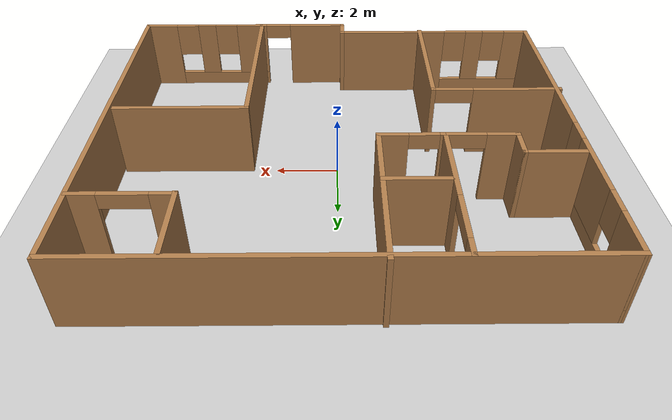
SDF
<sdf version="1.7">
 <world name="default">
  <light name="sun" type="directional">
   <pose>0 0 10 0 -0 0</pose>
   <diffuse>0.8 0.8 0.8 1</diffuse>
   <specular>0.2 0.2 0.2 1</specular>
   <attenuation>
    <range>1000</range>
    <constant>0.9</constant>
    <linear>0.01</linear>
    <quadratic>0.001</quadratic>
   </attenuation>
   <direction>-0.5 0.1 -0.9</direction>
   <spot><inner_angle>0</inner_angle><outer_angle>0</outer_angle><falloff>0</falloff></spot>
  </light>
  <model name="ground_plane">
   <static>1</static>
   <link name="link">
    <collision name="collision">
     <geometry><plane><normal>0 0 1</normal><size>100 100</size></plane></geometry>
     <surface>
      <contact><collide_bitmask>65535</collide_bitmask></contact>
      <friction><ode><mu>100</mu><mu2>50</mu2></ode></friction>
     </surface>
    </collision>
    <visual name="visual">
     <cast_shadows>0</cast_shadows>
     <geometry><plane><normal>0 0 1</normal><size>100 100</size></plane></geometry>
     <material>
      <script><uri>file://media/materials/scripts/gazebo.material</uri><name>Gazebo/Grey</name></script>
     </material>
    </visual>
   </link>
  </model>
  <gravity>0 0 -9.8</gravity>
  <magnetic_field>6e-06 2.3e-05 -4.2e-05</magnetic_field>
  <atmosphere type="adiabatic"/>
  <physics type="ode">
   <max_step_size>0.001</max_step_size>
   <real_time_factor>1</real_time_factor>
   <real_time_update_rate>1000</real_time_update_rate>
  </physics>
  <scene><ambient>0.4 0.4 0.4 1</ambient><background>0.7 0.7 0.7 1</background><shadows>1</shadows></scene>
  <spherical_coordinates>
   <surface_model>EARTH_WGS84</surface_model>
   <latitude_deg>0</latitude_deg>
   <longitude_deg>0</longitude_deg>
   <elevation>0</elevation>
   <heading_deg>0</heading_deg>
  </spherical_coordinates>
  <model name="mapb">
   <pose>-0.037608 0.260345 0 0 -0 0</pose>
   <link name="Door_6">
    <collision name="Door_6_Collision">
     <geometry><box><size>1.38668 0.2 2</size></box></geometry>
     <pose>0 0 1 0 -0 0</pose>
    </collision>
    <visual name="Door_6_Visual">
     <pose>0 0 1 0 -0 0</pose>
     <geometry><box><size>1.38668 0.2 2</size></box></geometry>
     <material>
      <script><uri>file://media/materials/scripts/gazebo.material</uri><name>Gazebo/Grey</name></script>
     </material>
    </visual>
    <pose>3.85504 -0.437893 0 0 -0 0</pose>
   </link>
   <link name="Wall_0">
    <collision name="Wall_0_Collision">
     <geometry><box><size>14.5 0.15 2.5</size></box></geometry>
     <pose>0 0 1.25 0 -0 0</pose>
    </collision>
    <visual name="Wall_0_Visual">
     <pose>0 0 1.25 0 -0 0</pose>
     <geometry><box><size>14.5 0.15 2.5</size></box></geometry>
     <material>
      <script><uri>file://media/materials/scripts/gazebo.material</uri><name>Gazebo/Wood</name></script>
      <ambient>1 1 1 1</ambient>
     </material>
     <meta><layer>0</layer></meta>
    </visual>
    <pose>0.000496 5.88162 0 0 -0 0</pose>
   </link>
   <link name="Wall_1">
    <collision name="Wall_1_Collision">
     <geometry><box><size>12 0.15 2.5</size></box></geometry>
     <pose>0 0 1.25 0 -0 0</pose>
    </collision>
    <visual name="Wall_1_Visual">
     <pose>0 0 1.25 0 -0 0</pose>
     <geometry><box><size>12 0.15 2.5</size></box></geometry>
     <material>
      <script><uri>file://media/materials/scripts/gazebo.material</uri><name>Gazebo/Wood</name></script>
      <ambient>1 1 1 1</ambient>
     </material>
     <meta><layer>0</layer></meta>
    </visual>
    <pose>7.1755 -0.043385 0 0 -0 -1.5708</pose>
   </link>
   <link name="Wall_10">
    <collision name="Wall_10_Collision">
     <geometry><box><size>5.75 0.15 2.5</size></box></geometry>
     <pose>0 0 1.25 0 -0 0</pose>
    </collision>
    <visual name="Wall_10_Visual">
     <pose>0 0 1.25 0 -0 0</pose>
     <geometry><box><size>5.75 0.15 2.5</size></box></geometry>
     <material>
      <script><uri>file://media/materials/scripts/gazebo.material</uri><name>Gazebo/Wood</name></script>
      <ambient>1 1 1 1</ambient>
     </material>
     <meta><layer>0</layer></meta>
    </visual>
    <pose>2.86479 -3.14485 0 0 -0 -1.5708</pose>
   </link>
   <link name="Wall_12">
    <collision name="Wall_12_Collision">
     <geometry><box><size>4.25 0.15 2.5</size></box></geometry>
     <pose>0 0 1.25 0 -0 0</pose>
    </collision>
    <visual name="Wall_12_Visual">
     <pose>0 0 1.25 0 -0 0</pose>
     <geometry><box><size>4.25 0.15 2.5</size></box></geometry>
     <material>
      <script><uri>file://media/materials/scripts/gazebo.material</uri><name>Gazebo/Wood</name></script>
      <ambient>1 1 1 1</ambient>
     </material>
     <meta><layer>0</layer></meta>
    </visual>
    <pose>4.91479 -0.344847 0 0 -0 0</pose>
   </link>
   <link name="Wall_14">
    <collision name="Wall_14_Collision">
     <geometry><box><size>2 0.15 2.5</size></box></geometry>
     <pose>0 0 1.25 0 -0 0</pose>
    </collision>
    <visual name="Wall_14_Visual">
     <pose>0 0 1.25 0 -0 0</pose>
     <geometry><box><size>2 0.15 2.5</size></box></geometry>
     <material>
      <script><uri>file://media/materials/scripts/gazebo.material</uri><name>Gazebo/Wood</name></script>
      <ambient>1 1 1 1</ambient>
     </material>
     <meta><layer>0</layer></meta>
    </visual>
    <pose>-6.18101 1.96839 0 0 -0 0</pose>
   </link>
   <link name="Wall_15">
    <collision name="Wall_15_Collision">
     <geometry><box><size>1 0.15 2.5</size></box></geometry>
     <pose>0 0 1.25 0 -0 0</pose>
    </collision>
    <visual name="Wall_15_Visual">
     <pose>0 0 1.25 0 -0 0</pose>
     <geometry><box><size>1 0.15 2.5</size></box></geometry>
     <material>
      <script><uri>file://media/materials/scripts/gazebo.material</uri><name>Gazebo/Wood</name></script>
      <ambient>1 1 1 1</ambient>
     </material>
     <meta><layer>0</layer></meta>
    </visual>
    <pose>-5.25601 1.54339 0 0 -0 -1.5708</pose>
   </link>
   <link name="Wall_16">
    <pose>-3.20601 1.11839 0 0 -0 0</pose>
    <visual name="Wall_16_Visual_0">
     <pose>-1.6276 0 1.25 0 -0 0</pose>
     <geometry><box><size>0.99479 0.15 2.5</size></box></geometry>
     <material>
      <script><uri>file://media/materials/scripts/gazebo.material</uri><name>Gazebo/Wood</name></script>
      <ambient>1 1 1 1</ambient>
     </material>
     <meta><layer>0</layer></meta>
    </visual>
    <collision name="Wall_16_Collision_0">
     <geometry><box><size>0.99479 0.15 2.5</size></box></geometry>
     <pose>-1.6276 0 1.25 0 -0 0</pose>
    </collision>
    <visual name="Wall_16_Visual_1">
     <pose>0.158097 0 1.25 0 -0 0</pose>
     <geometry><box><size>0.168265 0.15 2.5</size></box></geometry>
     <material>
      <script><uri>file://media/materials/scripts/gazebo.material</uri><name>Gazebo/Wood</name></script>
      <ambient>1 1 1 1</ambient>
     </material>
     <meta><layer>0</layer></meta>
    </visual>
    <collision name="Wall_16_Collision_1">
     <geometry><box><size>0.168265 0.15 2.5</size></box></geometry>
     <pose>0.158097 0 1.25 0 -0 0</pose>
    </collision>
    <visual name="Wall_16_Visual_2">
     <pose>1.64236 0 1.25 0 -0 0</pose>
     <geometry><box><size>0.965276 0.15 2.5</size></box></geometry>
     <material>
      <script><uri>file://media/materials/scripts/gazebo.material</uri><name>Gazebo/Wood</name></script>
      <ambient>1 1 1 1</ambient>
     </material>
     <meta><layer>0</layer></meta>
    </visual>
    <collision name="Wall_16_Collision_2">
     <geometry><box><size>0.965276 0.15 2.5</size></box></geometry>
     <pose>1.64236 0 1.25 0 -0 0</pose>
    </collision>
    <visual name="Wall_16_Visual_3">
     <pose>-0.528123 0 2.25 0 -0 0</pose>
     <geometry><box><size>1.20417 0.15 0.5</size></box></geometry>
     <material>
      <script><uri>file://media/materials/scripts/gazebo.material</uri><name>Gazebo/Wood</name></script>
      <ambient>1 1 1 1</ambient>
     </material>
     <meta><layer>0</layer></meta>
    </visual>
    <collision name="Wall_16_Collision_3">
     <geometry><box><size>1.20417 0.15 0.5</size></box></geometry>
     <pose>-0.528123 0 2.25 0 -0 0</pose>
    </collision>
    <visual name="Wall_16_Visual_4">
     <pose>0.700977 0 2.25 0 -0 0</pose>
     <geometry><box><size>0.917495 0.15 0.5</size></box></geometry>
     <material>
      <script><uri>file://media/materials/scripts/gazebo.material</uri><name>Gazebo/Wood</name></script>
      <ambient>1 1 1 1</ambient>
     </material>
     <meta><layer>0</layer></meta>
    </visual>
    <collision name="Wall_16_Collision_4">
     <geometry><box><size>0.917495 0.15 0.5</size></box></geometry>
     <pose>0.700977 0 2.25 0 -0 0</pose>
    </collision>
   </link>
   <link name="Wall_17">
    <collision name="Wall_17_Collision">
     <geometry><box><size>5 0.15 2.5</size></box></geometry>
     <pose>0 0 1.25 0 -0 0</pose>
    </collision>
    <visual name="Wall_17_Visual">
     <pose>0 0 1.25 0 -0 0</pose>
     <geometry><box><size>5 0.15 2.5</size></box></geometry>
     <material>
      <script><uri>file://media/materials/scripts/gazebo.material</uri><name>Gazebo/Wood</name></script>
      <ambient>1 1 1 1</ambient>
     </material>
     <meta><layer>0</layer></meta>
    </visual>
    <pose>-1.15601 3.54339 0 0 -0 1.5708</pose>
   </link>
   <link name="Wall_19">
    <pose>-3.12352 3.57042 0 0 -0 -1.5708</pose>
    <visual name="Wall_19_Visual_0">
     <pose>-2.07655 0 1.25 0 -0 0</pose>
     <geometry><box><size>0.596894 0.15 2.5</size></box></geometry>
     <material>
      <script><uri>file://media/materials/scripts/gazebo.material</uri><name>Gazebo/Wood</name></script>
      <ambient>1 1 1 1</ambient>
     </material>
     <meta><layer>0</layer></meta>
    </visual>
    <collision name="Wall_19_Collision_0">
     <geometry><box><size>0.596894 0.15 2.5</size></box></geometry>
     <pose>-2.07655 0 1.25 0 -0 0</pose>
    </collision>
    <visual name="Wall_19_Visual_1">
     <pose>1.06783 0 1.25 0 -0 0</pose>
     <geometry><box><size>2.61434 0.15 2.5</size></box></geometry>
     <material>
      <script><uri>file://media/materials/scripts/gazebo.material</uri><name>Gazebo/Wood</name></script>
      <ambient>1 1 1 1</ambient>
     </material>
     <meta><layer>0</layer></meta>
    </visual>
    <collision name="Wall_19_Collision_1">
     <geometry><box><size>2.61434 0.15 2.5</size></box></geometry>
     <pose>1.06783 0 1.25 0 -0 0</pose>
    </collision>
    <visual name="Wall_19_Visual_2">
     <pose>-1.00872 0 2.25 0 -0 0</pose>
     <geometry><box><size>1.53877 0.15 0.5</size></box></geometry>
     <material>
      <script><uri>file://media/materials/scripts/gazebo.material</uri><name>Gazebo/Wood</name></script>
      <ambient>1 1 1 1</ambient>
     </material>
     <meta><layer>0</layer></meta>
    </visual>
    <collision name="Wall_19_Collision_2">
     <geometry><box><size>1.53877 0.15 0.5</size></box></geometry>
     <pose>-1.00872 0 2.25 0 -0 0</pose>
    </collision>
   </link>
   <link name="Wall_2">
    <pose>3.5005 -5.96838 0 0 -0 3.14159</pose>
    <visual name="Wall_2_Visual_0">
     <pose>-3.16479 0 1.25 0 -0 0</pose>
     <geometry><box><size>1.17041 0.15 2.5</size></box></geometry>
     <material>
      <script><uri>file://media/materials/scripts/gazebo.material</uri><name>Gazebo/Wood</name></script>
      <ambient>1 1 1 1</ambient>
     </material>
     <meta><layer>0</layer></meta>
    </visual>
    <collision name="Wall_2_Collision_0">
     <geometry><box><size>1.17041 0.15 2.5</size></box></geometry>
     <pose>-3.16479 0 1.25 0 -0 0</pose>
    </collision>
    <visual name="Wall_2_Visual_1">
     <pose>2.72879 0 1.25 0 -0 0</pose>
     <geometry><box><size>2.04241 0.15 2.5</size></box></geometry>
     <material>
      <script><uri>file://media/materials/scripts/gazebo.material</uri><name>Gazebo/Wood</name></script>
      <ambient>1 1 1 1</ambient>
     </material>
     <meta><layer>0</layer></meta>
    </visual>
    <collision name="Wall_2_Collision_1">
     <geometry><box><size>2.04241 0.15 2.5</size></box></geometry>
     <pose>2.72879 0 1.25 0 -0 0</pose>
    </collision>
    <visual name="Wall_2_Visual_2">
     <pose>-0.886001 0 0.25 0 -0 0</pose>
     <geometry><box><size>3.38718 0.15 0.5</size></box></geometry>
     <material>
      <script><uri>file://media/materials/scripts/gazebo.material</uri><name>Gazebo/Wood</name></script>
      <ambient>1 1 1 1</ambient>
     </material>
     <meta><layer>0</layer></meta>
    </visual>
    <collision name="Wall_2_Collision_2">
     <geometry><box><size>3.38718 0.15 0.5</size></box></geometry>
     <pose>-0.886001 0 0.25 0 -0 0</pose>
    </collision>
    <visual name="Wall_2_Visual_3">
     <pose>-1.44957 0 1.5 0 -0 0</pose>
     <geometry><box><size>0.66004 0.15 2</size></box></geometry>
     <material>
      <script><uri>file://media/materials/scripts/gazebo.material</uri><name>Gazebo/Wood</name></script>
      <ambient>1 1 1 1</ambient>
     </material>
     <meta><layer>0</layer></meta>
    </visual>
    <collision name="Wall_2_Collision_3">
     <geometry><box><size>0.66004 0.15 2</size></box></geometry>
     <pose>-1.44957 0 1.5 0 -0 0</pose>
    </collision>
    <visual name="Wall_2_Visual_4">
     <pose>0.244019 0 1.5 0 -0 0</pose>
     <geometry><box><size>1.12714 0.15 2</size></box></geometry>
     <material>
      <script><uri>file://media/materials/scripts/gazebo.material</uri><name>Gazebo/Wood</name></script>
      <ambient>1 1 1 1</ambient>
     </material>
     <meta><layer>0</layer></meta>
    </visual>
    <collision name="Wall_2_Collision_4">
     <geometry><box><size>1.12714 0.15 2</size></box></geometry>
     <pose>0.244019 0 1.5 0 -0 0</pose>
    </collision>
    <visual name="Wall_2_Visual_5">
     <pose>-2.17959 0 1.9 0 -0 0</pose>
     <geometry><box><size>0.8 0.15 1.2</size></box></geometry>
     <material>
      <script><uri>file://media/materials/scripts/gazebo.material</uri><name>Gazebo/Wood</name></script>
      <ambient>1 1 1 1</ambient>
     </material>
     <meta><layer>0</layer></meta>
    </visual>
    <collision name="Wall_2_Collision_5">
     <geometry><box><size>0.8 0.15 1.2</size></box></geometry>
     <pose>-2.17959 0 1.9 0 -0 0</pose>
    </collision>
    <visual name="Wall_2_Visual_6">
     <pose>-0.719549 0 1.9 0 -0 0</pose>
     <geometry><box><size>0.8 0.15 1.2</size></box></geometry>
     <material>
      <script><uri>file://media/materials/scripts/gazebo.material</uri><name>Gazebo/Wood</name></script>
      <ambient>1 1 1 1</ambient>
     </material>
     <meta><layer>0</layer></meta>
    </visual>
    <collision name="Wall_2_Collision_6">
     <geometry><box><size>0.8 0.15 1.2</size></box></geometry>
     <pose>-0.719549 0 1.9 0 -0 0</pose>
    </collision>
    <visual name="Wall_2_Visual_7">
     <pose>1.25759 0 2.25 0 -0 0</pose>
     <geometry><box><size>0.9 0.15 0.5</size></box></geometry>
     <material>
      <script><uri>file://media/materials/scripts/gazebo.material</uri><name>Gazebo/Wood</name></script>
      <ambient>1 1 1 1</ambient>
     </material>
     <meta><layer>0</layer></meta>
    </visual>
    <collision name="Wall_2_Collision_7">
     <geometry><box><size>0.9 0.15 0.5</size></box></geometry>
     <pose>1.25759 0 2.25 0 -0 0</pose>
    </collision>
   </link>
   <link name="Wall_24">
    <pose>5.71513 3.66847 0 0 -0 3.14159</pose>
    <visual name="Wall_24_Visual_0">
     <pose>-1.07155 0 1.25 0 -0 0</pose>
     <geometry><box><size>0.856909 0.15 2.5</size></box></geometry>
     <material>
      <script><uri>file://media/materials/scripts/gazebo.material</uri><name>Gazebo/Wood</name></script>
      <ambient>1 1 1 1</ambient>
     </material>
     <meta><layer>0</layer></meta>
    </visual>
    <collision name="Wall_24_Collision_0">
     <geometry><box><size>0.856909 0.15 2.5</size></box></geometry>
     <pose>-1.07155 0 1.25 0 -0 0</pose>
    </collision>
    <visual name="Wall_24_Visual_1">
     <pose>1.12179 0 1.25 0 -0 0</pose>
     <geometry><box><size>0.756411 0.15 2.5</size></box></geometry>
     <material>
      <script><uri>file://media/materials/scripts/gazebo.material</uri><name>Gazebo/Wood</name></script>
      <ambient>1 1 1 1</ambient>
     </material>
     <meta><layer>0</layer></meta>
    </visual>
    <collision name="Wall_24_Collision_1">
     <geometry><box><size>0.756411 0.15 2.5</size></box></geometry>
     <pose>1.12179 0 1.25 0 -0 0</pose>
    </collision>
    <visual name="Wall_24_Visual_2">
     <pose>0.050249 0 2.25 0 -0 0</pose>
     <geometry><box><size>1.38668 0.15 0.5</size></box></geometry>
     <material>
      <script><uri>file://media/materials/scripts/gazebo.material</uri><name>Gazebo/Wood</name></script>
      <ambient>1 1 1 1</ambient>
     </material>
     <meta><layer>0</layer></meta>
    </visual>
    <collision name="Wall_24_Collision_2">
     <geometry><box><size>1.38668 0.15 0.5</size></box></geometry>
     <pose>0.050249 0 2.25 0 -0 0</pose>
    </collision>
   </link>
   <link name="Wall_25">
    <collision name="Wall_25_Collision">
     <geometry><box><size>2.25 0.15 2.5</size></box></geometry>
     <pose>0 0 1.25 0 -0 0</pose>
    </collision>
    <visual name="Wall_25_Visual">
     <pose>0 0 1.25 0 -0 0</pose>
     <geometry><box><size>2.25 0.15 2.5</size></box></geometry>
     <material>
      <script><uri>file://media/materials/scripts/gazebo.material</uri><name>Gazebo/Wood</name></script>
      <ambient>1 1 1 1</ambient>
     </material>
     <meta><layer>0</layer></meta>
    </visual>
    <pose>4.29013 4.71847 0 0 -0 1.5708</pose>
   </link>
   <link name="Wall_27">
    <pose>-5.1245 -1.34485 0 0 -0 3.14159</pose>
    <visual name="Wall_27_Visual_0">
     <pose>-2.11957 0 1.25 0 -0 0</pose>
     <geometry><box><size>0.01087 0.15 2.5</size></box></geometry>
     <material>
      <script><uri>file://media/materials/scripts/gazebo.material</uri><name>Gazebo/Wood</name></script>
      <ambient>1 1 1 1</ambient>
     </material>
     <meta><layer>0</layer></meta>
    </visual>
    <collision name="Wall_27_Collision_0">
     <geometry><box><size>0.01087 0.15 2.5</size></box></geometry>
     <pose>-2.11957 0 1.25 0 -0 0</pose>
    </collision>
    <visual name="Wall_27_Visual_1">
     <pose>0.683566 0 1.25 0 -0 0</pose>
     <geometry><box><size>2.88287 0.15 2.5</size></box></geometry>
     <material>
      <script><uri>file://media/materials/scripts/gazebo.material</uri><name>Gazebo/Wood</name></script>
      <ambient>1 1 1 1</ambient>
     </material>
     <meta><layer>0</layer></meta>
    </visual>
    <collision name="Wall_27_Collision_1">
     <geometry><box><size>2.88287 0.15 2.5</size></box></geometry>
     <pose>0.683566 0 1.25 0 -0 0</pose>
    </collision>
    <visual name="Wall_27_Visual_2">
     <pose>-1.436 0 2.25 0 -0 0</pose>
     <geometry><box><size>1.35626 0.15 0.5</size></box></geometry>
     <material>
      <script><uri>file://media/materials/scripts/gazebo.material</uri><name>Gazebo/Wood</name></script>
      <ambient>1 1 1 1</ambient>
     </material>
     <meta><layer>0</layer></meta>
    </visual>
    <collision name="Wall_27_Collision_2">
     <geometry><box><size>1.35626 0.15 0.5</size></box></geometry>
     <pose>-1.436 0 2.25 0 -0 0</pose>
    </collision>
   </link>
   <link name="Wall_29">
    <collision name="Wall_29_Collision">
     <geometry><box><size>2 0.15 2.5</size></box></geometry>
     <pose>0 0 1.25 0 -0 0</pose>
    </collision>
    <visual name="Wall_29_Visual">
     <pose>0 0 1.25 0 -0 0</pose>
     <geometry><box><size>2 0.15 2.5</size></box></geometry>
     <material>
      <script><uri>file://media/materials/scripts/gazebo.material</uri><name>Gazebo/Wood</name></script>
      <ambient>1 1 1 1</ambient>
     </material>
     <meta><layer>0</layer></meta>
    </visual>
    <pose>-2.08766 3.12095 0 0 -0 0</pose>
   </link>
   <link name="Wall_3">
    <collision name="Wall_3_Collision">
     <geometry><box><size>0.75 0.15 2.5</size></box></geometry>
     <pose>0 0 1.25 0 -0 0</pose>
    </collision>
    <visual name="Wall_3_Visual">
     <pose>0 0 1.25 0 -0 0</pose>
     <geometry><box><size>0.75 0.15 2.5</size></box></geometry>
     <material>
      <script><uri>file://media/materials/scripts/gazebo.material</uri><name>Gazebo/Wood</name></script>
      <ambient>1 1 1 1</ambient>
     </material>
     <meta><layer>0</layer></meta>
    </visual>
    <pose>-0.174504 -5.66838 0 0 -0 1.5708</pose>
   </link>
   <link name="Wall_4">
    <pose>-3.5995 -5.36838 0 0 -0 3.14159</pose>
    <visual name="Wall_4_Visual_0">
     <pose>-1.5557 0 1.25 0 -0 0</pose>
     <geometry><box><size>3.8886 0.15 2.5</size></box></geometry>
     <material>
      <script><uri>file://media/materials/scripts/gazebo.material</uri><name>Gazebo/Wood</name></script>
      <ambient>1 1 1 1</ambient>
     </material>
     <meta><layer>0</layer></meta>
    </visual>
    <collision name="Wall_4_Collision_0">
     <geometry><box><size>3.8886 0.15 2.5</size></box></geometry>
     <pose>-1.5557 0 1.25 0 -0 0</pose>
    </collision>
    <visual name="Wall_4_Visual_1">
     <pose>1.9443 0 0.25 0 -0 0</pose>
     <geometry><box><size>3.1114 0.15 0.5</size></box></geometry>
     <material>
      <script><uri>file://media/materials/scripts/gazebo.material</uri><name>Gazebo/Wood</name></script>
      <ambient>1 1 1 1</ambient>
     </material>
     <meta><layer>0</layer></meta>
    </visual>
    <collision name="Wall_4_Collision_1">
     <geometry><box><size>3.1114 0.15 0.5</size></box></geometry>
     <pose>1.9443 0 0.25 0 -0 0</pose>
    </collision>
    <visual name="Wall_4_Visual_2">
     <pose>1.50341 0 1.5 0 -0 0</pose>
     <geometry><box><size>0.629623 0.15 2</size></box></geometry>
     <material>
      <script><uri>file://media/materials/scripts/gazebo.material</uri><name>Gazebo/Wood</name></script>
      <ambient>1 1 1 1</ambient>
     </material>
     <meta><layer>0</layer></meta>
    </visual>
    <collision name="Wall_4_Collision_2">
     <geometry><box><size>0.629623 0.15 2</size></box></geometry>
     <pose>1.50341 0 1.5 0 -0 0</pose>
    </collision>
    <visual name="Wall_4_Visual_3">
     <pose>3.05911 0 1.5 0 -0 0</pose>
     <geometry><box><size>0.881774 0.15 2</size></box></geometry>
     <material>
      <script><uri>file://media/materials/scripts/gazebo.material</uri><name>Gazebo/Wood</name></script>
      <ambient>1 1 1 1</ambient>
     </material>
     <meta><layer>0</layer></meta>
    </visual>
    <collision name="Wall_4_Collision_3">
     <geometry><box><size>0.881774 0.15 2</size></box></geometry>
     <pose>3.05911 0 1.5 0 -0 0</pose>
    </collision>
    <visual name="Wall_4_Visual_4">
     <pose>0.788603 0 1.9 0 -0 0</pose>
     <geometry><box><size>0.8 0.15 1.2</size></box></geometry>
     <material>
      <script><uri>file://media/materials/scripts/gazebo.material</uri><name>Gazebo/Wood</name></script>
      <ambient>1 1 1 1</ambient>
     </material>
     <meta><layer>0</layer></meta>
    </visual>
    <collision name="Wall_4_Collision_4">
     <geometry><box><size>0.8 0.15 1.2</size></box></geometry>
     <pose>0.788603 0 1.9 0 -0 0</pose>
    </collision>
    <visual name="Wall_4_Visual_5">
     <pose>2.21823 0 1.9 0 -0 0</pose>
     <geometry><box><size>0.8 0.15 1.2</size></box></geometry>
     <material>
      <script><uri>file://media/materials/scripts/gazebo.material</uri><name>Gazebo/Wood</name></script>
      <ambient>1 1 1 1</ambient>
     </material>
     <meta><layer>0</layer></meta>
    </visual>
    <collision name="Wall_4_Collision_5">
     <geometry><box><size>0.8 0.15 1.2</size></box></geometry>
     <pose>2.21823 0 1.9 0 -0 0</pose>
    </collision>
   </link>
   <link name="Wall_5">
    <pose>-7.0995 0.256615 0 0 -0 1.58413</pose>
    <visual name="Wall_5_Visual_0">
     <pose>-2.69776 0 1.25 0 -0 0</pose>
     <geometry><box><size>6.00548 0.15 2.5</size></box></geometry>
     <material>
      <script><uri>file://media/materials/scripts/gazebo.material</uri><name>Gazebo/Wood</name></script>
      <ambient>1 1 1 1</ambient>
     </material>
     <meta><layer>0</layer></meta>
    </visual>
    <collision name="Wall_5_Collision_0">
     <geometry><box><size>6.00548 0.15 2.5</size></box></geometry>
     <pose>-2.69776 0 1.25 0 -0 0</pose>
    </collision>
    <visual name="Wall_5_Visual_1">
     <pose>3.00274 0 0.25 0 -0 0</pose>
     <geometry><box><size>5.39552 0.15 0.5</size></box></geometry>
     <material>
      <script><uri>file://media/materials/scripts/gazebo.material</uri><name>Gazebo/Wood</name></script>
      <ambient>1 1 1 1</ambient>
     </material>
     <meta><layer>0</layer></meta>
    </visual>
    <collision name="Wall_5_Collision_1">
     <geometry><box><size>5.39552 0.15 0.5</size></box></geometry>
     <pose>3.00274 0 0.25 0 -0 0</pose>
    </collision>
    <visual name="Wall_5_Visual_2">
     <pose>2.24215 0 1.5 0 -0 0</pose>
     <geometry><box><size>2.27433 0.15 2</size></box></geometry>
     <material>
      <script><uri>file://media/materials/scripts/gazebo.material</uri><name>Gazebo/Wood</name></script>
      <ambient>1 1 1 1</ambient>
     </material>
     <meta><layer>0</layer></meta>
    </visual>
    <collision name="Wall_5_Collision_2">
     <geometry><box><size>2.27433 0.15 2</size></box></geometry>
     <pose>2.24215 0 1.5 0 -0 0</pose>
    </collision>
    <visual name="Wall_5_Visual_3">
     <pose>4.93991 0 1.5 0 -0 0</pose>
     <geometry><box><size>1.52119 0.15 2</size></box></geometry>
     <material>
      <script><uri>file://media/materials/scripts/gazebo.material</uri><name>Gazebo/Wood</name></script>
      <ambient>1 1 1 1</ambient>
     </material>
     <meta><layer>0</layer></meta>
    </visual>
    <collision name="Wall_5_Collision_3">
     <geometry><box><size>1.52119 0.15 2</size></box></geometry>
     <pose>4.93991 0 1.5 0 -0 0</pose>
    </collision>
    <visual name="Wall_5_Visual_4">
     <pose>0.704983 0 1.9 0 -0 0</pose>
     <geometry><box><size>0.8 0.15 1.2</size></box></geometry>
     <material>
      <script><uri>file://media/materials/scripts/gazebo.material</uri><name>Gazebo/Wood</name></script>
      <ambient>1 1 1 1</ambient>
     </material>
     <meta><layer>0</layer></meta>
    </visual>
    <collision name="Wall_5_Collision_4">
     <geometry><box><size>0.8 0.15 1.2</size></box></geometry>
     <pose>0.704983 0 1.9 0 -0 0</pose>
    </collision>
    <visual name="Wall_5_Visual_5">
     <pose>3.77931 0 1.9 0 -0 0</pose>
     <geometry><box><size>0.8 0.15 1.2</size></box></geometry>
     <material>
      <script><uri>file://media/materials/scripts/gazebo.material</uri><name>Gazebo/Wood</name></script>
      <ambient>1 1 1 1</ambient>
     </material>
     <meta><layer>0</layer></meta>
    </visual>
    <collision name="Wall_5_Collision_5">
     <geometry><box><size>0.8 0.15 1.2</size></box></geometry>
     <pose>3.77931 0 1.9 0 -0 0</pose>
    </collision>
   </link>
   <link name="Wall_8">
    <collision name="Wall_8_Collision">
     <geometry><box><size>4.25 0.15 2.5</size></box></geometry>
     <pose>0 0 1.25 0 -0 0</pose>
    </collision>
    <visual name="Wall_8_Visual">
     <pose>0 0 1.25 0 -0 0</pose>
     <geometry><box><size>4.25 0.15 2.5</size></box></geometry>
     <material>
      <script><uri>file://media/materials/scripts/gazebo.material</uri><name>Gazebo/Wood</name></script>
      <ambient>1 1 1 1</ambient>
     </material>
     <meta><layer>0</layer></meta>
    </visual>
    <pose>-3.0745 -3.39485 0 0 -0 -1.5708</pose>
   </link>
   <static>1</static>
  </model>
 </world>
</sdf>
